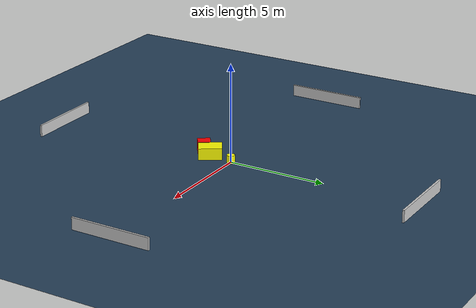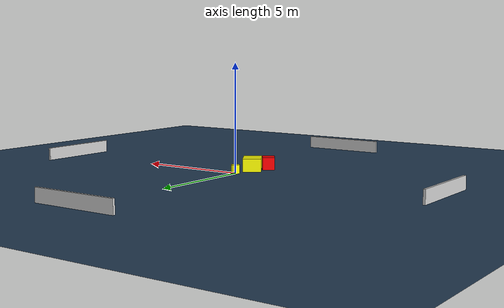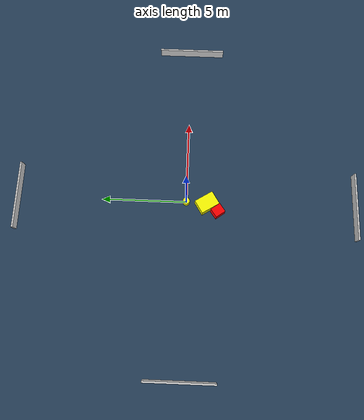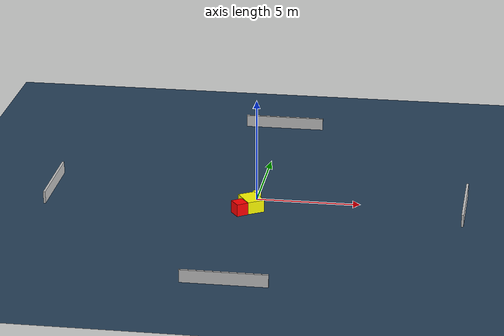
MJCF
<?xml version="1.0" ?>
<mujoco model="generated_environment">
  <option timestep="0.01" integrator="RK4" cone="elliptic"/>
  <default>
    <geom density="1"/>
  </default>
  <asset>
    <texture builtin="gradient" height="3072" name="skybox" rgb1="0.3 0.5 0.7" rgb2="0 0 0" type="skybox" width="512"/>
    <texture builtin="checker" height="300" name="groundplane" rgb1="0.2 0.3 0.4" rgb2="0.1 0.2 0.3" type="2d" width="300"/>
    <material name="groundplane" reflectance="0.2" texrepeat="5 5" texture="groundplane"/>
  </asset>
  <worldbody>
    <light dir="0 0 -1" directional="true" pos="0 0 1.5"/>
    <geom condim="3" friction="0.5 0.005 0.001" material="groundplane" name="floor" pos="0 0 0" size="0 0 0.05" type="plane"/>
    <body name="walls">
      <geom name="wall_1" condim="4" pos="-10.0 0.0 0.3" rgba="0.800000011920929 0.800000011920929 0.800000011920929 1.0" size="0.05 2.0 0.3" type="box"/>
      <geom name="wall_2" condim="4" pos="10.0 0.0 0.3" rgba="0.800000011920929 0.800000011920929 0.800000011920929 1.0" size="0.05 2.0 0.3" type="box"/>
      <geom name="wall_3" condim="4" pos="0.0 -10.0 0.3" rgba="0.800000011920929 0.800000011920929 0.800000011920929 1.0" size="2.0 0.05 0.3" type="box"/>
      <geom name="wall_4" condim="4" pos="0.0 10.0 0.3" rgba="0.800000011920929 0.800000011920929 0.800000011920929 1.0" size="2.0 0.05 0.3" type="box"/>
    </body>
    <body name="robot">
      <joint name="joint_x" type="slide" pos="0 0 0" axis="1 0 0"/>
      <joint name="joint_y" type="slide" pos="0 0 0" axis="0 1 0"/>
      <geom name="robot" type="cylinder" pos="0.0 0.0 0.2" size="0.2 0.2 0.0" mass="5.0" friction="1.0 0.005 0.0001" condim="4" rgba="1.0 1.0 0.0 1.0"/>
    </body>
    <body name="obstacle_1_movable">
      <geom name="obstacle_1_movable" condim="4" pos="-0.08647653906265511 -1.2284695073127125 0.3" euler="0 0 302.07314507002104" friction="0.0 0.005 0.001" rgba="1.0 1.0 0.0 1.0" size="0.5852068011527629 0.4203114512748239 0.3" type="box" mass="0.1"/>
      <joint type="free"/>
    </body>
    <body name="obstacle_2_static">
      <geom name="obstacle_2_static" condim="4" pos="-0.548054538190746 -1.8725726646216037 0.3" euler="0 0 305.6539946837835" friction="0.0 0.005 0.001" rgba="1.0 0.0 0.0 1.0" size="0.32039478005002553 0.2834108772329923 0.3" type="box"/>
    </body>
  </worldbody>
  <actuator>
    <motor name="actuator_x" joint="joint_x" gear="1" ctrlrange="-1 1"/>
    <motor name="actuator_y" joint="joint_y" gear="1" ctrlrange="-1 1"/>
  </actuator>
</mujoco>
